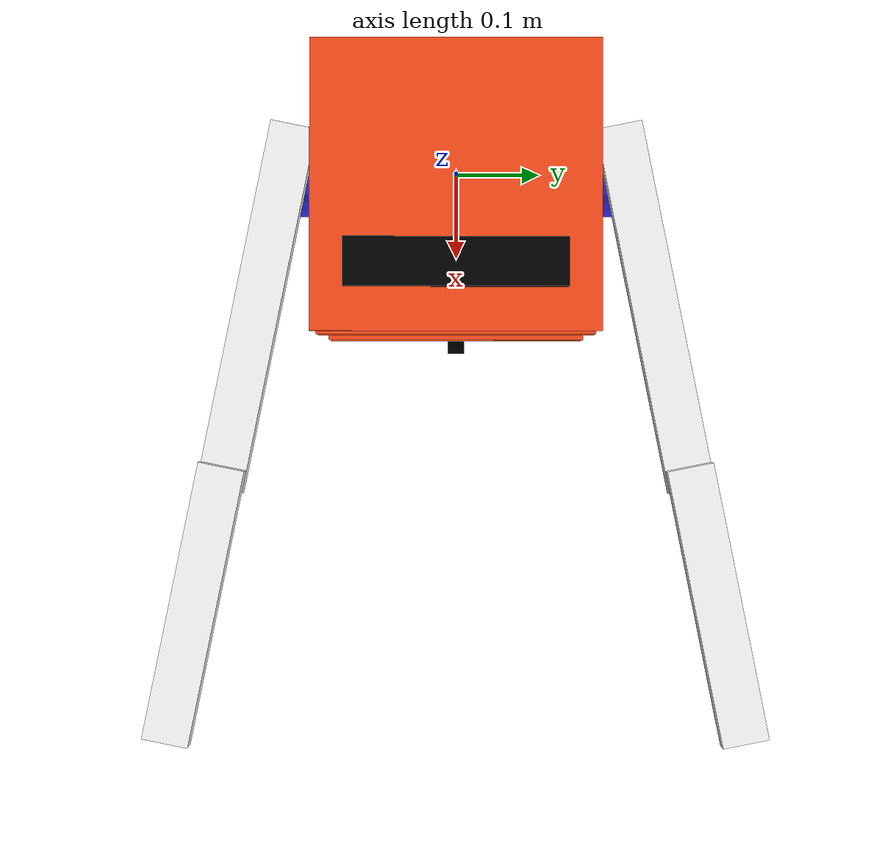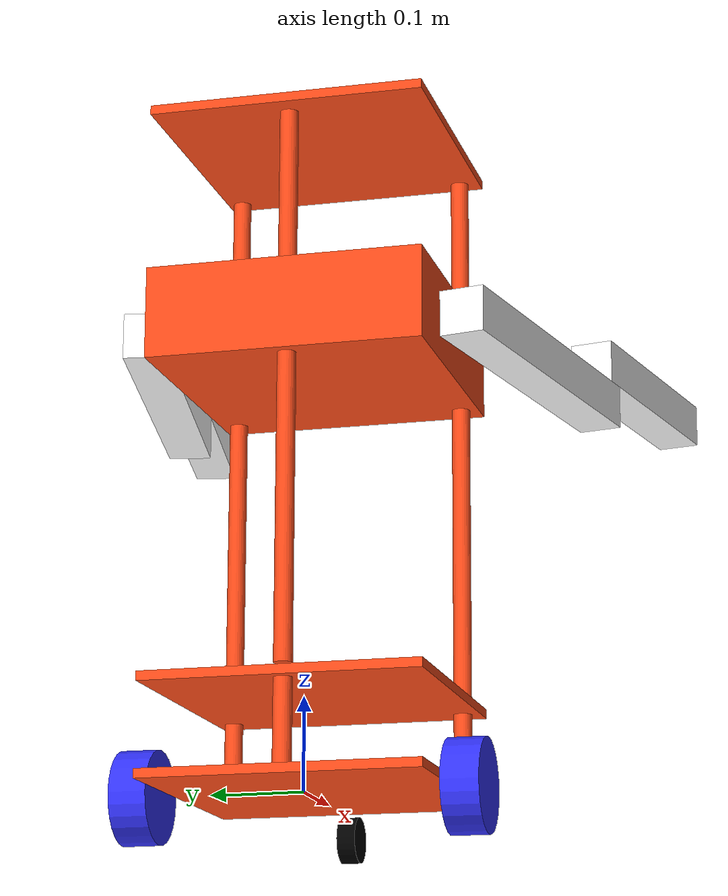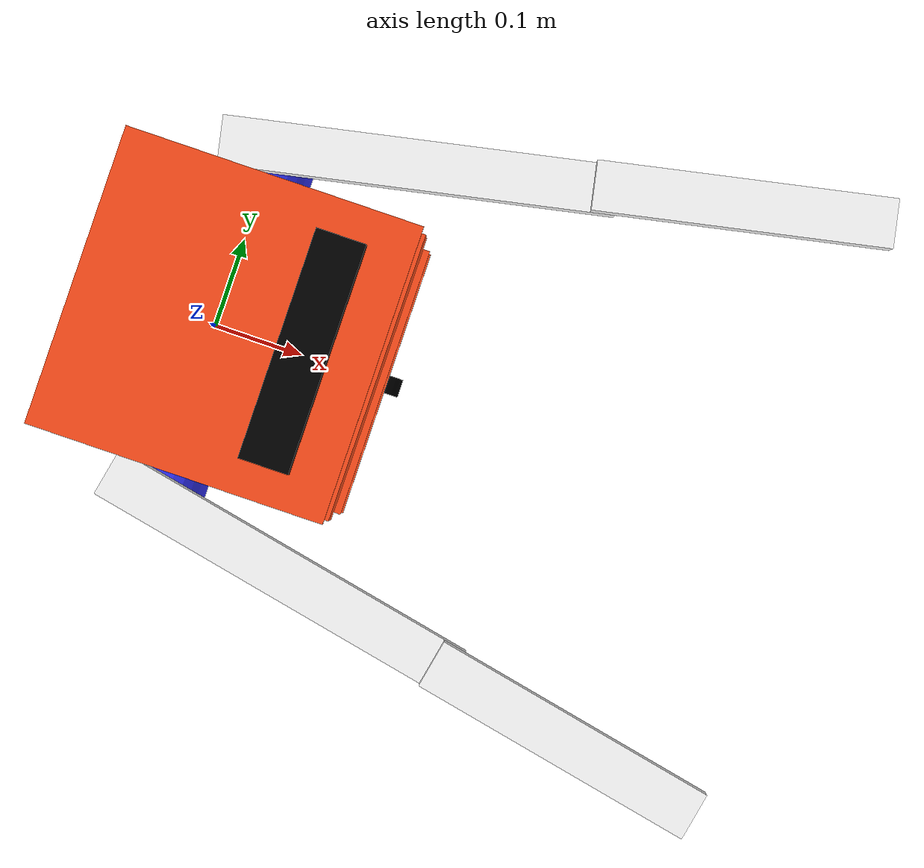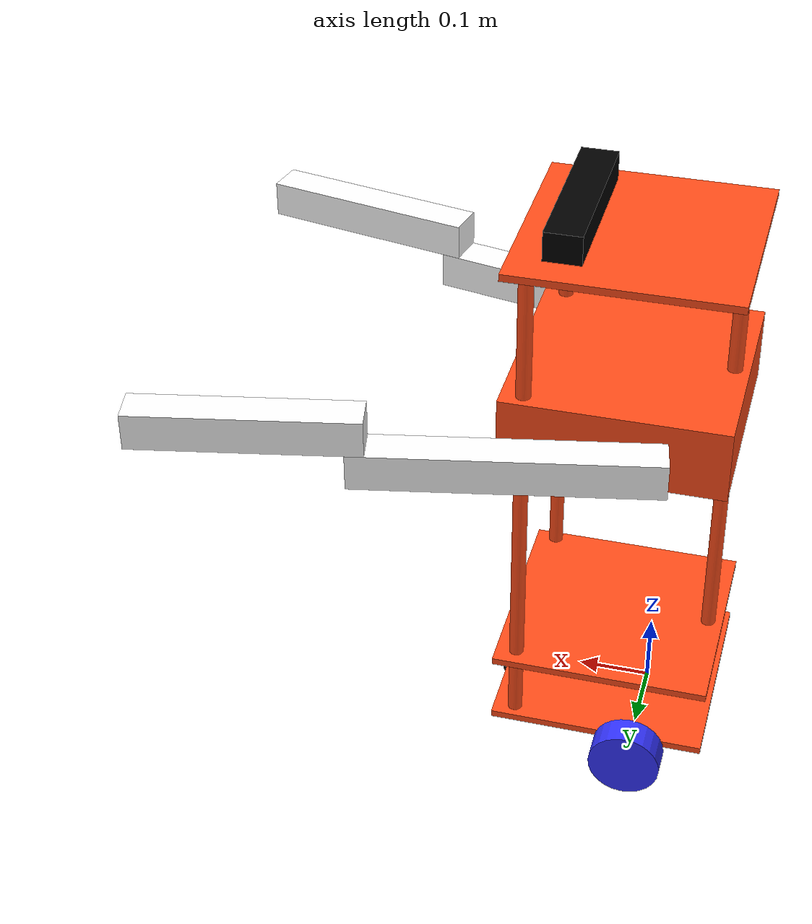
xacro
<?xml version="1.0"?>
<robot xmlns:xacro="http://www.ros.org/wiki/xacro" name="robot">

    <xacro:arg name="use_ros2_control" default="true"/>

    <!-- ////////////////////////Constants////////////////////////////////////////////////////// -->

    <!-- Macros for Inertials -->
    <xacro:macro name="inertial_sphere" params="mass radius *origin">
        <inertial>
            <xacro:insert_block name="origin"/>
            <mass value="${mass}" />
            <inertia ixx="${(2/5) * mass * (radius*radius)}" ixy="0.0" ixz="0.0"
                    iyy="${(2/5) * mass * (radius*radius)}" iyz="0.0"
                    izz="${(2/5) * mass * (radius*radius)}" />
        </inertial>
    </xacro:macro>

    <xacro:macro name="inertial_box" params="mass x y z *origin">
        <inertial>
            <xacro:insert_block name="origin"/>
            <mass value="${mass}" />
            <inertia ixx="${(1/12) * mass * (y*y+z*z)}" ixy="0.0" ixz="0.0"
                    iyy="${(1/12) * mass * (x*x+z*z)}" iyz="0.0"
                    izz="${(1/12) * mass * (x*x+y*y)}" />
        </inertial>
    </xacro:macro>

    <xacro:macro name="inertial_cylinder" params="mass length radius *origin">
        <inertial>
            <xacro:insert_block name="origin"/>
            <mass value="${mass}" />
            <inertia ixx="${(1/12) * mass * (3*radius*radius + length*length)}" ixy="0.0" ixz="0.0"
                    iyy="${(1/12) * mass * (3*radius*radius + length*length)}" iyz="0.0"
                    izz="${(1/2) * mass * (radius*radius)}" />
        </inertial>
    </xacro:macro>

    <!-- ////////////////////////Constants////////////////////////////////////////////////////// -->

    <!-- Materials -->
    <material name="white">
        <color rgba="1 1 1 1" />
    </material>

    <material name="blue">
        <color rgba="0.2 0.2 1 1" />
    </material>

    <material name="black">
        <color rgba="0 0 0 1" />
    </material>

    <material name="red">
        <color rgba="1 0 0 1" />
    </material>

    <material name="orange">
        <color rgba="1 0.3 0.1 1" />
    </material>

    <!-- ////////////////////////Base/////////////////////////////////////////////////////////// -->

    <!-- Base Link -->
    <link name="base_link"/>

    <!-- Base Footprint Link -->
    <joint name="base_footprint_joint" type="fixed">
        <parent link="base_link"/>
        <child link="base_footprint"/>
        <origin xyz="0 0 0" rpy="0 0 0"/>
    </joint>

    <link name="base_footprint"/>

    <!-- ////////////////////////Chassis//////////////////////////////////////////////////////// -->

    <!-- Chassis Link -->
    <joint name="chassis_joint" type="fixed">
        <parent link="base_link"/>
        <child link="chassis"/>
        <origin xyz="-0.1 0 0"/>
    </joint>

    <link name="chassis">
        <visual>
            <!-- First Deck -->
            <origin xyz="0.15 0 0.01"/>
            <geometry>
                <box size="0.3 0.3 0.01"/>
            </geometry>
            <material name="orange"/>
        </visual>
        <visual>
            <!-- Second Deck -->
            <origin xyz="0.15 0 0.11"/> <!-- Adjusted for height of first deck plus poles -->
            <geometry>
                <box size="0.3 0.3 0.01"/>
            </geometry>
            <material name="orange"/>
        </visual>
        <visual>
            <!-- Pole 1 -->
            <origin xyz="0.27 0.13 0.06"/> <!-- Centered and at mid height between decks -->
            <geometry>
                <cylinder radius="0.01" length="0.1"/> <!-- Adjust length to span between decks -->
            </geometry>
            <material name="orange"/>
        </visual>
        <visual>
            <!-- Pole 2 -->
            <origin xyz="0.27 -0.13 0.06"/> <!-- Centered and at mid height between decks -->
            <geometry>
                <cylinder radius="0.01" length="0.1"/>
            </geometry>
            <material name="orange"/>
        </visual>
        <visual>
            <!-- Pole 3 -->
            <origin xyz="0.02 0 0.06"/> <!-- Centered and at mid height between decks -->
            <geometry>
                <cylinder radius="0.01" length="0.1"/>
            </geometry>
            <material name="orange"/>
        </visual>
        <visual>
            <!-- Tall Pole 1 -->
            <origin xyz="0.27 0.13 0.42"/> <!-- Centered and at mid height between decks -->
            <geometry>
                <cylinder radius="0.01" length="0.6"/> <!-- Adjust length to span between decks -->
            </geometry>
            <material name="orange"/>
        </visual>
        <visual>
            <!-- Tall Pole 2 -->
            <origin xyz="0.27 -0.13 0.42"/> <!-- Centered and at mid height between decks -->
            <geometry>
                <cylinder radius="0.01" length="0.6"/>
            </geometry>
            <material name="orange"/>
        </visual>
        <visual>
            <!-- Tall Pole 3 -->
            <origin xyz="0.02 0 0.42"/> <!-- Centered and at mid height between decks -->
            <geometry>
                <cylinder radius="0.01" length="0.6"/>
            </geometry>
            <material name="orange"/>
        </visual>
        <visual>
            <!-- Third Deck -->
            <origin xyz="0.15 0 0.73"/> <!-- Adjusted for height of first deck plus poles -->
            <geometry>
                <box size="0.3 0.3 0.01"/>
            </geometry>
            <material name="orange"/>
        </visual>
        <visual>
            <!-- Third Deck -->
            <origin xyz="0.15 0 0.5"/> <!-- Adjusted for height of first deck plus poles -->
            <geometry>
                <box size="0.3 0.3 0.1"/>
            </geometry>
            <material name="orange"/>
        </visual>
        <collision>
            <origin xyz="0.15 0 0.075"/>
            <geometry>
                <box size="0.3 0.3 0.15"/>
            </geometry>
        </collision>
        <xacro:inertial_box mass="0.5" x="0.3" y="0.3" z="0.15">
            <origin xyz="0.15 0 0.075" rpy="0 0 0"/>
        </xacro:inertial_box>
    </link>

    <gazebo reference="chassis">
        <material>Gazebo/White</material>
    </gazebo>

    <!-- ////////////////////////Wheels///////////////////////////////////////////////////////// -->

    <!-- Left Wheel Link -->
    <joint name="left_wheel_joint" type="continuous">
        <parent link="base_link"/>
        <child link="left_wheel"/>
        <origin xyz="0 0.175 0" rpy="-${pi/2} 0 0"/>
        <axis xyz="0 0 1"/>
    </joint>

    <link name="left_wheel">
        <visual>
            <geometry>
                <cylinder radius="0.05" length="0.04"/>
            </geometry>
            <material name="blue"/>
        </visual>
        <collision>
            <geometry>
                <sphere radius="0.05"/>
            </geometry>
        </collision>
        <xacro:inertial_cylinder mass="0.1" length="0.04" radius="0.05">
            <origin xyz="0 0 0" rpy="0 0 0"/>
        </xacro:inertial_cylinder>
    </link>

    <gazebo reference="left_wheel">
        <material>Gazebo/Black</material>
    </gazebo>

    <!-- Right Wheel Link -->
    <joint name="right_wheel_joint" type="continuous">
        <parent link="base_link"/>
        <child link="right_wheel"/>
        <origin xyz="0 -0.175 0" rpy="${pi/2} 0 0"/>
        <axis xyz="0 0 -1"/>
    </joint>

    <link name="right_wheel">
        <visual>
            <geometry>
                <cylinder radius="0.05" length="0.04"/>
            </geometry>
            <material name="blue"/>
        </visual>
        <collision>
            <geometry>
                <sphere radius="0.05"/>
            </geometry>
        </collision>
        <xacro:inertial_cylinder mass="0.1" length="0.04" radius="0.05">
            <origin xyz="0 0 0" rpy="0 0 0"/>
        </xacro:inertial_cylinder>
    </link>

    <gazebo reference="right_wheel">
        <material>Gazebo/Black</material>
    </gazebo>

    <!-- Caster Wheel Link -->
    <joint name="caster_wheel_joint" type="fixed">
        <parent link="chassis"/>
        <child link="caster_wheel"/>
        <origin xyz="0.24 0 0"/>
    </joint>

    <link name="caster_wheel">
        <visual>
            <origin xyz="0.05 0 -0.025" rpy="-${pi/2} 0 0"/>
            <geometry>
                <cylinder radius="0.025" length="0.02"/>
            </geometry>
            <material name="black"/>
        </visual>
        <collision>
            <geometry>
                <sphere radius="0.05"/>
            </geometry>
        </collision>
        <xacro:inertial_sphere mass="0.1" radius="0.05">
            <origin xyz="0 0 0" rpy="0 0 0"/>
        </xacro:inertial_sphere>
    </link>

    <gazebo reference="caster_wheel">
        <material>Gazebo/Black</material>
        <mu1 value="0.001"/>
        <mu2 value="0.001"/>
    </gazebo>

    <!-- ////////////////////////Gazebo Plugins///////////////////////////////////////////////// -->

    <!-- Control Selection -->

    <ros2_control name="GazeboSystem" type="system">
        <hardware>
            <plugin>gazebo_ros2_control/GazeboSystem</plugin>
        </hardware>
        <joint name="left_wheel_joint">
            <command_interface name="velocity">
                <param name="min"></param>
                <param name="max"></param>
            </command_interface>
            <state_interface name="velocity"/>
            <state_interface name="position"/>
        </joint>
        <joint name="right_wheel_joint">
            <command_interface name="velocity">
                <param name="min"></param>
                <param name="max"></param>
            </command_interface>
            <state_interface name="velocity"/>
            <state_interface name="position"/>
        </joint>
        <joint name="left_arm_joint">
            <command_interface name="position">
                <param name="min"></param>
                <param name="max"></param>
            </command_interface>
            <state_interface name="velocity"/>
            <state_interface name="position"/>
        </joint>
        <joint name="right_arm_2_joint">
            <command_interface name="position">
                <param name="min"></param>
                <param name="max"></param>
            </command_interface>
            <state_interface name="velocity"/>
            <state_interface name="position"/>
        </joint>
        <joint name="left_arm_2_joint">
            <command_interface name="position">
                <param name="min"></param>
                <param name="max"></param>
            </command_interface>
            <state_interface name="velocity"/>
            <state_interface name="position"/>
        </joint>
        <joint name="right_arm_joint">
            <command_interface name="position">
                <param name="min"></param>
                <param name="max"></param>
            </command_interface>
            <state_interface name="velocity"/>
            <state_interface name="position"/>
        </joint>
    </ros2_control>

    <gazebo>
        <plugin name="gazebo_ros2_control" filename="libgazebo_ros2_control.so">
            <parameters>$(find SLAM_ros2_bot)/config/my_parameters.yaml</parameters>
        </plugin>
    </gazebo>

    <!-- ////////////////////////Counter Weight///////////////////////////////////////////////// -->

    <!-- counter weight -->
    <joint name="counter_weight_joint" type="fixed">
        <parent link="chassis"/>
        <child link="counter_weight_frame"/>
        <origin xyz="0.1 0 0.13" rpy="0 0 0"/>
    </joint>

    <link name="counter_weight_frame">
        <collision>
            <geometry>
                <cylinder radius="0.05" length="0.04"/>
            </geometry>
        </collision>
        <xacro:inertial_cylinder mass="0.1" length="0.04" radius="0.05">
            <origin xyz="0 0 0" rpy="0 0 0"/>
        </xacro:inertial_cylinder>
    </link>

    <!-- ////////////////////////Left arm/////////////////////////////////////////////////////// -->

    <!-- Left Arm Link -->
    <joint name="left_arm_joint" type="continuous">
        <parent link="base_link"/>
        <child link="left_arm_1"/>
        <origin xyz="0 0.175 0.5" rpy="-${pi/2} 0 0.2"/>
        <axis xyz="0 0 1"/>
    </joint>

    <link name="left_arm_1">
        <visual>
            <geometry>
                <box size="0.4 0.05 0.05"/>
            </geometry>
            <origin xyz="0.175 0 0.005"/>
            <material name="white"/>
        </visual>
        <collision>
            <geometry>
                <box size="0.4 0.05 0.05"/>
            </geometry>
            <origin xyz="0.175 0 0.005"/>
        </collision>
        <xacro:inertial_cylinder mass="0.0001" length="0.04" radius="0.05">
            <origin xyz="0 0 0" rpy="0 0 0"/>
        </xacro:inertial_cylinder>
    </link>

    <joint name="left_arm_2_joint" type="continuous">
        <parent link="left_arm_1"/>
        <child link="left_arm_2"/>
        <origin xyz="0.36 -0.05 0" rpy="0 0 0"/>
        <axis xyz="0 1 0"/>
    </joint>

    <link name="left_arm_2">
        <visual>
            <geometry>
                <box size="0.3 0.05 0.05"/>
            </geometry>
            <origin xyz="0.14 0 0.005"/>
            <material name="white"/>
        </visual>
        <collision>
            <geometry>
                <sphere radius="0.05"/>
            </geometry>
        </collision>
        <xacro:inertial_cylinder mass="0.0001" length="0.04" radius="0.05">
            <origin xyz="0 0 0" rpy="0 0 0"/>
        </xacro:inertial_cylinder>
    </link>

    <gazebo reference="left_arm_1">
        <material>Gazebo/White</material>
    </gazebo>

    <gazebo reference="left_arm_2">
        <material>Gazebo/White</material>
    </gazebo>

    <!-- ////////////////////////Right arm////////////////////////////////////////////////////// -->

    <!-- Right Arm Link -->
    <joint name="right_arm_joint" type="continuous">
        <parent link="base_link"/>
        <child link="right_arm_1"/>
        <origin xyz="0 -0.175 0.5" rpy="${pi/2} 0 -0.2"/>
        <axis xyz="0 0 -1"/>
    </joint>

    <link name="right_arm_1">
        <visual>
            <geometry>
                <box size="0.4 0.05 0.05"/>
            </geometry>
            <origin xyz="0.175 0 0.005"/>
            <material name="white"/>
        </visual>
        <collision>
            <geometry>
                <sphere radius="0.05"/>
            </geometry>
        </collision>
        <xacro:inertial_cylinder mass="0.0001" length="0.04" radius="0.05">
            <origin xyz="0 0 0" rpy="0 0 0"/>
        </xacro:inertial_cylinder>
    </link>

    <joint name="right_arm_2_joint" type="continuous">
        <parent link="right_arm_1"/>
        <child link="right_arm_2"/>
        <origin xyz="0.36 0.05 0" rpy="0 0 0"/>
        <axis xyz="0 1 0"/>
    </joint>

    <link name="right_arm_2">
        <visual>
            <geometry>
                <box size="0.3 0.05 0.05"/>
            </geometry>
            <origin xyz="0.14 0 0.005"/>
            <material name="white"/>
        </visual>
        <collision>
            <geometry>
                <sphere radius="0.05"/>
            </geometry>
        </collision>
        <xacro:inertial_cylinder mass="0.0001" length="0.04" radius="0.05">
            <origin xyz="0 0 0" rpy="0 0 0"/>
        </xacro:inertial_cylinder>
    </link>

    <gazebo reference="right_arm_1">
        <material>Gazebo/White</material>
    </gazebo>

    <gazebo reference="right_arm_2">
        <material>Gazebo/White</material>
    </gazebo>

    <!-- ////////////////////////Ros control for arms/////////////////////////////////////////////////////// -->

    <!-- ////////////////////////Kinect V2/////////////////////////////////////////////////////// -->

    <!-- Kinect Link -->
    <link name="laser_frame">
        <visual>
        <geometry>
            <box size="0.05 0.23 0.04"/>
        </geometry>
        <origin xyz="0.13 0 0.26" rpy="0 0 0"/>
        <material name="black"/>
        </visual>
    </link>

    <!-- Kinect Joint -->
    <joint name="laser_joint" type="fixed">
        <parent link="base_link"/>
        <child link="laser_frame"/>
        <origin xyz="0 0 0.5" rpy="0 0 0"/>
    </joint>

    <!-- Kinect Gazebo Configuration -->
    <gazebo reference="laser_frame">
        <material>Gazebo/Black</material>
        <sensor type="depth" name="kinect_depth">
        <update_rate>30</update_rate>
        <pose>0 0 0 0 0 0</pose>
        <visualize>true</visualize>
        <depth>
            <clip>
            <near>0.1</near>
            <far>10.0</far>
            </clip>
            <horizontal_fov>1.047</horizontal_fov>
        </depth>
        <camera>
            <horizontal_fov>1.047</horizontal_fov>
            <image>
            <width>640</width>
            <height>480</height>
            <format>R8G8B8</format>
            </image>
            <clip>
            <near>0.1</near>
            <far>10.0</far>
            </clip>
        </camera>
        <plugin name="kinect_camera_controller" filename="libgazebo_ros_camera.so">
            <alwaysOn>true</alwaysOn>
            <updateRate>0.0</updateRate>
            <cameraName>kinect_rgb</cameraName>
        </plugin>
        <plugin name="depth_camera_controller" filename="libgazebo_ros_depth_camera.so">
            <alwaysOn>true</alwaysOn>
            <updateRate>0.0</updateRate>
            <cameraName>kinect_depth</cameraName>
        </plugin>
        </sensor>
    </gazebo>

    <gazebo>
        <plugin name="gazebo_ros_openni_kinect" filename="libgazebo_ros_openni_kinect.so">
        <alwaysOn>true</alwaysOn>
        <updateRate>0.0</updateRate>
        <cameraName>kinect</cameraName>
        </plugin>
    </gazebo>

</robot>
